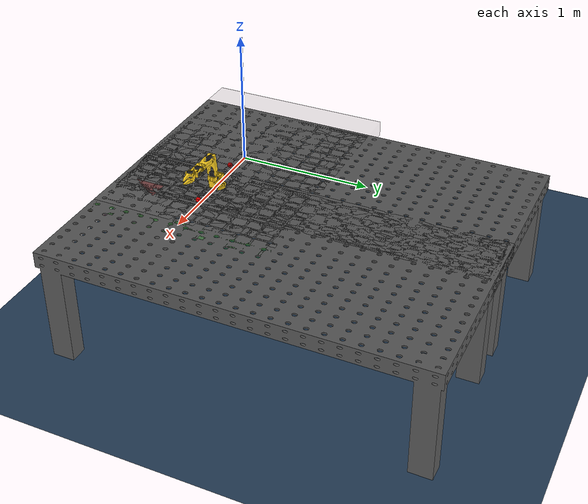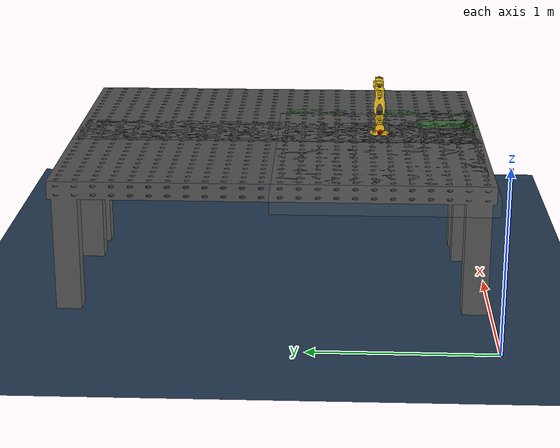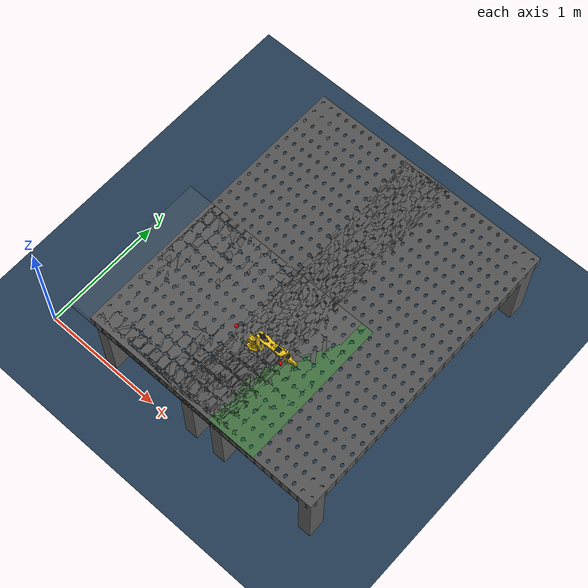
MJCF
<?xml version="1.0" ?>
<!-- SO101 Pick Box Scene - SO101 only, no UR5e -->
<mujoco model="so101_pick_box_scene">

    <compiler angle="radian" autolimits="true" />
    <option timestep="0.002" integrator="implicitfast" solver="PGS" cone="elliptic" impratio="10" noslip_iterations="3">
        <!-- 啟用 multiccd 和 nativeccd 以改善碰撞偵測，防止滑脫 -->
        <flag multiccd="enable" nativeccd="enable"/>
    </option>

    <!-- Include SO101 robot -->
    <include file="D:/lerobot_arm/mujoco_ur5_graph/imitation_learning_lerobot/assets/SO-ARM100/Simulation/SO101/so101_new_calib.xml" />

    <size memory="512000000" />
    <statistic center="1.4 0.6 0.8" extent="0.8" meansize="0.08" />

    <visual>
        <headlight diffuse="0.6 0.6 0.6" ambient="0.1 0.1 0.1" specular="0 0 0" />
        <rgba haze="0.15 0.25 0.35 1" />
        <global azimuth="120" elevation="-20" />
    </visual>

    <asset>
        <texture type="skybox" builtin="gradient" rgb1="0.3 0.5 0.7" rgb2="0 0 0" width="512" height="3072" />
        <texture type="2d" name="groundplane" builtin="checker" mark="edge" rgb1="0.2 0.3 0.4"
                 rgb2="0.1 0.2 0.3" markrgb="0.8 0.8 0.8" width="300" height="300" />
        <material name="groundplane" texture="groundplane" texuniform="true" texrepeat="5 5"
                  reflectance="0.2" />
        <mesh name="table" file="../table/sigmund_table.stl" scale="-1.5 2 1"/>
    </asset>

    <worldbody>
        <light pos="0 0 1.5" dir="0 0 -1" directional="true" />
        <geom name="floor" size="0 0 0.05" type="plane" material="groundplane" />

        <!-- Coordinate axes for debugging -->
        <geom name="x-aixs" group="2" type="cylinder" contype="0" conaffinity="0"
            fromto="0 0 0 1 0 0" size="0.01" rgba="1 0 0 1" />
        <geom name="y-aixs" group="2" type="cylinder" contype="0" conaffinity="0"
            fromto="0 0 0 0 1 0" size="0.01" rgba="0 1 0 1" />
        <geom name="z-aixs" group="2" type="cylinder" contype="0" conaffinity="0"
            fromto="0 0 0 0 0 1" size="0.01" rgba="0 0 1 1" />

        <!-- Cameras -->
        <!-- top: 後方高處俯視，可看到整隻手臂和操作區域 -->
        <camera name="top" pos="2.685 0.585 2.055" xyaxes="-0.009 1.000 0.000 -0.774 -0.007 0.633"/>

        <camera name="side" pos="2.224 1.451 1.025" xyaxes="-0.839 0.545 -0.000 -0.019 -0.029 0.999"/>

        <!-- Target point visualization (red sphere) - controlled by environment -->
        <body name="target_marker" pos="1.3 0.6 0.8" mocap="true">
            <geom name="target_marker" type="sphere" size="0.015" rgba="1 0 0 0.8" contype="0" conaffinity="0"/>
        </body>

        <!-- Red Box (target object) - 2F85 style friction settings -->
        <body name="Box" pos="1.70 0.6 0.78" quat="1 0 0 0">
            <joint name="Box" type="free" damping="0.05"/>
            <geom name="Box" type="box" size="0.01 0.01 0.01" rgba="1 0 0 1"
                  condim="6"
                  friction="5.0 1.0 0.5"
                  solimp="0.95 0.99 0.001"
                  solref="0.004 1"
                  priority="1"/>
        </body>

        <!-- Table -->
         <!--table -->
         <!-- Zones -->
		<body name="zone_pickup" pos="1.8 0.6 0.73" quat="1 0 0 0">
			<geom name="zone_pickup" type="box" size="0.2 0.6 0.01" rgba="0 1 0 0.1" contype="0" conaffinity="0"/>
		</body>
		<body name="zone_drop" pos="1.8 0.15 0.73" quat="1 0 0 0">
			<geom name="zone_drop" type="box" size="0.2 0.15 0.01" rgba="1 0 0 0.1" contype="0" conaffinity="0"/>
		</body>

		<body name = "table1" euler="0 0 0" pos= "0.5 0 0.74" >
		  <geom name = "table1" type="mesh" mesh="table" group="2" rgba="0.35 0.35 0.35 1" mass="0" contype="0" conaffinity="0" />
		</body>
		<body name = "table2" euler="0 0 0" pos= "1.3 0 0.74" >
		  <geom name = "table2" type="mesh" mesh="table" group="2" rgba="0.35 0.35 0.35 1" mass="0" contype="0" conaffinity="0" />
		</body>
        <body name="simple_table" pos="1.1 0.6 0.69" quat="1 0 0 0">
			<geom name="simple_table" type="box" size="0.8 0.6 0.05" rgba="0.5 0.5 0.5 0.1"/>
		</body>

    </worldbody>

    <equality>
        <!-- SO101 gripper grasping constraints (for future use) -->
        <weld name="grasp_so101" body1="so101_gripper" body2="Box" active="false" />
    </equality>

    <keyframe>
        <key name="home" qpos="-7.49507e-09 -1.74664 1.51484 1.25158 0.046801 -0.174534 1.69826 0.603792 0.749784 0.999998 7.56413e-06 -3.27543e-08 0.00219379" ctrl="0 -1.745 1.69 1.658 0 -0.1745" />
    </keyframe>

</mujoco>

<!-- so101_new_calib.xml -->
<!-- Generated using onshape-to-robot -->
<!-- Onshape https://cad.onshape.com/documents/7715cc284bb430fe6dab4ffd/w/4fd0791b683777b02f8d975a/e/826c553ede3b7592eb9ca800 -->
<mujoco model="so101_new_calib">
  <compiler angle="radian" autolimits="true" />
  <default>
    <default class="so101_new_calib">
      <joint damping="1" frictionloss="0.1" armature="0.005"/>
      <position kp="1000"/>
        <default class="so101_visual">
        <geom type="mesh" contype="0" conaffinity="0" group="2"/>
      </default>
        <default class="so101_collision">
        <geom group="3" contype="1" conaffinity="1"
              friction="7.0 1.0 0.5"
              solimp="0.95 0.99 0.001"
              solref="0.004 1"
              priority="1"/>
      </default>
    </default>
  </default>
  <!-- Additional joints_properties.xml -->
  <default>
    <default class="sts3215">
      <geom contype="0" conaffinity="0"/>
      <joint damping="0.60" frictionloss="0.052" armature="0.028"/>
      <!-- For lerobot this are not exactly the motor params as the Kp and Kd not map 1-to-1 thus motor idendification with lerobot Kp=16 and Kd=32 should actually be done -->
      <position kp="17.8"/>
    </default>
    <default class="backlash">
      <!-- +/- 0.5° of backlash -->
      <joint damping="0.01" frictionloss="0" armature="0.01" limited="true" range="-0.008726646259971648 0.008726646259971648"/>
    </default>
  </default>
  <worldbody>
    <!-- Link base -->
    <body name="so101_base" pos="1.45 0.6 0.745" quat="1 0 0 0" childclass="so101_new_calib">
      <inertial pos="0.0137179 -5.19711e-05 0.0334843" mass="0.147" fullinertia="0.000114686 0.000136117 0.000130364 -4.59787e-07 4.97151e-06 9.75275e-08"/>
      <!-- Part base_motor_holder_so101_v1 -->
      <geom type="mesh" class="so101_visual" pos="-0.00636471 -9.94414e-05 -0.0024" quat="0.5 0.5 0.5 0.5" mesh="so101_base_motor_holder_so101_v1" material="base_motor_holder_so101_v1_material"/>
      <!-- Part base_so101_v2 -->
      <geom type="mesh" class="so101_visual" pos="-0.00636471 -8.97657e-09 -0.0024" quat="0.5 0.5 0.5 0.5" mesh="so101_base_so101_v2" material="base_so101_v2_material"/>
      <!-- Part sts3215_03a_v1 -->
      <geom type="mesh" class="so101_visual" pos="0.0263353 -8.97657e-09 0.0437" quat="1 -2.85511e-16 -9.64433e-17 6.12908e-16" mesh="so101_sts3215_03a_v1" material="sts3215_03a_v1_material"/>
      <!-- Part waveshare_mounting_plate_so101_v2 -->
      <geom type="mesh" class="so101_visual" pos="-0.0309827 -0.000199441 0.0474" quat="0.5 0.5 0.5 0.5" mesh="so101_waveshare_mounting_plate_so101_v2" material="waveshare_mounting_plate_so101_v2_material"/>
      <!-- Frame baseframe -->
      <site group="3" name="so101_baseframe" pos="8.67362e-19 9.55596e-18 3.46945e-18" quat="1 -8.17396e-19 3.78392e-17 2.22045e-16"/>
      <!-- Link shoulder -->
      <body name="so101_shoulder" pos="0.0388353 -8.97657e-09 0.0624" quat="3.56167e-16 1.22818e-15 -1 -4.14635e-16">
        <!-- Joint from base to shoulder -->
        <joint axis="0 0 1" name="so101_shoulder_pan" type="hinge" range="-1.9198621771937616 1.9198621771937634" class="sts3215"/>
        <inertial pos="-0.0307604 -1.66727e-05 -0.0252713" mass="0.100006" fullinertia="8.3759e-05 8.10403e-05 2.39783e-05 7.55525e-08 -1.16342e-06 1.54663e-07"/>
        <!-- Part sts3215_03a_v1_2 -->
        <geom type="mesh" class="so101_visual" pos="-0.0303992 0.000422241 -0.0417" quat="0.5 0.5 0.5 -0.5" mesh="so101_sts3215_03a_v1" material="sts3215_03a_v1_material"/>
        <geom type="mesh" class="so101_collision" pos="-0.0303992 0.000422241 -0.0417" quat="0.5 0.5 0.5 -0.5" mesh="so101_sts3215_03a_v1" material="sts3215_03a_v1_material"/>
        <!-- Part motor_holder_so101_base_v1 -->
        <geom type="mesh" class="so101_visual" pos="-0.0675992 -0.000177759 0.0158499" quat="0.5 0.5 -0.5 0.5" mesh="so101_motor_holder_so101_base_v1" material="motor_holder_so101_base_v1_material"/>
        <geom type="mesh" class="so101_collision" pos="-0.0675992 -0.000177759 0.0158499" quat="0.5 0.5 -0.5 0.5" mesh="so101_motor_holder_so101_base_v1" material="motor_holder_so101_base_v1_material"/>
        <!-- Part rotation_pitch_so101_v1 -->
        <geom type="mesh" class="so101_visual" pos="0.0122008 2.22413e-05 0.0464" quat="0.707107 -0.707107 -0 8.3163e-34" mesh="so101_rotation_pitch_so101_v1" material="rotation_pitch_so101_v1_material"/>
        <geom type="mesh" class="so101_collision" pos="0.0122008 2.22413e-05 0.0464" quat="0.707107 -0.707107 -0 8.3163e-34" mesh="so101_rotation_pitch_so101_v1" material="rotation_pitch_so101_v1_material"/>
        <!-- Link upper_arm -->
        <body name="so101_upper_arm" pos="-0.0303992 -0.0182778 -0.0542" quat="0.5 -0.5 -0.5 -0.5">
          <!-- Joint from shoulder to upper_arm -->
          <joint axis="0 0 1" name="so101_shoulder_lift" type="hinge" range="-1.7453292519943224 1.7453292519943366" class="sts3215"/>
          <inertial pos="-0.0898471 -0.00838224 0.0184089" mass="0.103" fullinertia="4.08002e-05 0.000147318 0.000142487 -1.97819e-05 -4.03016e-08 8.97326e-09"/>
          <!-- Part sts3215_03a_v1_3 -->
          <geom type="mesh" class="so101_visual" pos="-0.11257 -0.0155 0.0187" quat="4.56308e-16 -0.707107 0.707107 -1.37383e-16" mesh="so101_sts3215_03a_v1" material="sts3215_03a_v1_material"/>
          <geom type="mesh" class="so101_collision" pos="-0.11257 -0.0155 0.0187" quat="4.56308e-16 -0.707107 0.707107 -1.37383e-16" mesh="so101_sts3215_03a_v1" material="sts3215_03a_v1_material"/>
          <!-- Part upper_arm_so101_v1 -->
          <geom type="mesh" class="so101_visual" pos="-0.065085 0.012 0.0182" quat="0 1 0 0" mesh="so101_upper_arm_so101_v1" material="upper_arm_so101_v1_material"/>
          <geom type="mesh" class="so101_collision" pos="-0.065085 0.012 0.0182" quat="0 1 0 0" mesh="so101_upper_arm_so101_v1" material="upper_arm_so101_v1_material"/>
          <!-- Link lower_arm -->
          <body name="so101_lower_arm" pos="-0.11257 -0.028 1.73763e-16" quat="0.707107 -5.98613e-17 -2.58051e-17 0.707107">
            <!-- Joint from upper_arm to lower_arm -->
            <!-- Note: 5-degree calibration offset applied to joint range -->
            <joint axis="0 0 1" name="so101_elbow_flex" type="hinge" range="-1.69 1.69" class="sts3215"/>
            <inertial pos="-0.0980701 0.00324376 0.0182831" mass="0.104" fullinertia="2.87438e-05 0.000159844 0.00014529 7.41152e-06 1.26409e-06 -4.90188e-08"/>
            <!-- Part under_arm_so101_v1 -->
            <geom type="mesh" class="so101_visual" pos="-0.0648499 -0.032 0.0182" quat="0 1 0 0" mesh="so101_under_arm_so101_v1" material="under_arm_so101_v1_material"/>
            <geom type="mesh" class="so101_collision" pos="-0.0648499 -0.032 0.0182" quat="0 1 0 0" mesh="so101_under_arm_so101_v1" material="under_arm_so101_v1_material"/>
            <!-- Part motor_holder_so101_wrist_v1 -->
            <geom type="mesh" class="so101_visual" pos="-0.0648499 -0.032 0.018" quat="3.92687e-16 -1 -1.9186e-15 -6.38378e-16" mesh="so101_motor_holder_so101_wrist_v1" material="motor_holder_so101_wrist_v1_material"/>
            <geom type="mesh" class="so101_collision" pos="-0.0648499 -0.032 0.018" quat="3.92687e-16 -1 -1.9186e-15 -6.38378e-16" mesh="so101_motor_holder_so101_wrist_v1" material="motor_holder_so101_wrist_v1_material"/>
            <!-- Part sts3215_03a_v1_4 -->
            <geom type="mesh" class="so101_visual" pos="-0.1224 0.0052 0.0187" quat="7.21645e-16 1.56949e-15 1 -3.33067e-16" mesh="so101_sts3215_03a_v1" material="sts3215_03a_v1_material"/>
            <geom type="mesh" class="so101_collision" pos="-0.1224 0.0052 0.0187" quat="7.21645e-16 1.56949e-15 1 -3.33067e-16" mesh="so101_sts3215_03a_v1" material="sts3215_03a_v1_material"/>
            <!-- Link wrist -->
            <body name="so101_wrist" pos="-0.1349 0.0052 3.62355e-17" quat="0.707107 9.58722e-16 -7.51313e-16 -0.707107">
              <!-- Joint from lower_arm to wrist -->
              <joint axis="0 0 1" name="so101_wrist_flex" type="hinge" range="-1.6580628494556928 1.6580627293335335" class="sts3215"/>
              <inertial pos="-0.000103312 -0.0386143 0.0281156" mass="0.079" fullinertia="3.68263e-05 2.5391e-05 2.1e-05 1.7893e-08 -5.28128e-08 3.6412e-06"/>
              <!-- Part sts3215_03a_no_horn_v1 -->
              <geom type="mesh" class="so101_visual" pos="8.32667e-17 -0.0424 0.0306" quat="0.5 0.5 0.5 -0.5" mesh="so101_sts3215_03a_no_horn_v1" material="sts3215_03a_no_horn_v1_material"/>
              <geom type="mesh" class="so101_collision" pos="8.32667e-17 -0.0424 0.0306" quat="0.5 0.5 0.5 -0.5" mesh="so101_sts3215_03a_no_horn_v1" material="sts3215_03a_no_horn_v1_material"/>
              <!-- Part wrist_roll_pitch_so101_v2 -->
              <geom type="mesh" class="so101_visual" pos="0 -0.028 0.0181" quat="0.5 -0.5 -0.5 -0.5" mesh="so101_wrist_roll_pitch_so101_v2" material="wrist_roll_pitch_so101_v2_material"/>
              <geom type="mesh" class="so101_collision" pos="0 -0.028 0.0181" quat="0.5 -0.5 -0.5 -0.5" mesh="so101_wrist_roll_pitch_so101_v2" material="wrist_roll_pitch_so101_v2_material"/>
              <!-- Link gripper -->
              <body name="so101_gripper" pos="5.55112e-17 -0.0611 0.0181" quat="0.0172091 -0.0172091 0.706897 0.706897">
                <!-- Joint from wrist to gripper -->
                <joint axis="0 0 1" name="so101_wrist_roll" type="hinge" range="-2.7438472969992493 2.841206309382605" class="sts3215"/>
                <inertial pos="0.000213627 0.000245138 -0.025187" mass="0.087" fullinertia="2.75087e-05 4.33657e-05 3.45059e-05 -3.35241e-07 -5.7352e-06 -5.17847e-08"/>
                <!-- Part sts3215_03a_v1_5 -->
                <geom type="mesh" class="so101_visual" pos="0.0077 0.0001 -0.0234" quat="0.707107 -0.707107 1.66015e-15 6.45094e-15" mesh="so101_sts3215_03a_v1" material="sts3215_03a_v1_material"/>
                <geom type="mesh" class="so101_collision" pos="0.0077 0.0001 -0.0234" quat="0.707107 -0.707107 1.66015e-15 6.45094e-15" mesh="so101_sts3215_03a_v1" material="sts3215_03a_v1_material"/>
                <!-- Part wrist_roll_follower_so101_v1 -->
                <geom type="mesh" class="so101_visual" pos="8.32667e-17 -0.000218214 0.000949706" quat="0 1 0 0" mesh="so101_wrist_roll_follower_so101_v1" material="wrist_roll_follower_so101_v1_material"/>
                <geom type="mesh" class="so101_collision" pos="8.32667e-17 -0.000218214 0.000949706" quat="0 1 0 0" mesh="so101_wrist_roll_follower_so101_v1" material="wrist_roll_follower_so101_v1_material"
                      friction="5.0" solimp="0.95 0.99 0.001" solref="0.004 1" priority="1" condim="6"/>
                <!-- Frame gripperframe -->
                <site group="3" name="so101_gripperframe" pos="-0.0079 -0.000218121 -0.0981274" quat="0.707107 -0 0.707107 -2.37788e-17"/>
                <!-- hand: 跟隨夾爪相機，從後上方俯視夾爪 -->
                <!-- gripperframe 位於 z=-0.098，所以夾爪尖端在負Z方向 -->
                <!-- 相機放在後上方 (z=0.05, y=0.06)，看向前下方 (負Z方向) -->
                <camera name="hand" pos="0 0.05 -0.01" xyaxes="1 0 0 0 0.6 -0.8" mode="fixed" fovy="80" />
                <!-- 固定爪：使用 mesh 碰撞（上方 wrist_roll_follower 已設定高摩擦） -->
                <!-- Link moving_jaw_so101_v1 -->
                <body name="moving_jaw_so101_v1" pos="0.0202 0.0188 -0.0234" quat="0.707107 0.707107 -1.85362e-08 1.85362e-08">
                  <!-- Joint from gripper to moving_jaw_so101_v1 -->
                  <joint axis="0 0 1" name="so101_gripper_joint" type="hinge" range="-0.17453297762778586 1.7453291995659765" class="sts3215"/>
                  <inertial pos="-0.00157495 -0.0300244 0.0192755" mass="0.012" fullinertia="6.61427e-06 1.89032e-06 5.28738e-06 -3.19807e-07 -5.90717e-09 -1.09945e-07"/>
                  <!-- Part moving_jaw_so101_v1 -->
                  <geom type="mesh" class="so101_visual" pos="-5.55112e-17 -5.55112e-17 0.0189" quat="1 -0 3.00524e-16 -2.00834e-17" mesh="so101_moving_jaw_so101_v1" material="moving_jaw_so101_v1_material"/>
                  <!-- 活動爪：使用 mesh 碰撞（設定高摩擦） -->
                  <geom type="mesh" class="so101_collision"
                        pos="-5.55112e-17 -5.55112e-17 0.0189" quat="1 -0 3.00524e-16 -2.00834e-17"
                        mesh="so101_moving_jaw_so101_v1" material="moving_jaw_so101_v1_material"
                        friction="5.0" solimp="0.95 0.99 0.001" solref="0.004 1"
                        priority="1" condim="6"/>
                  <!-- 舊的 box 碰撞墊（已停用）-->
                </body>
              </body>
            </body>
          </body>
        </body>
      </body>
    </body>
  </worldbody>
  <asset>
    <mesh name="so101_waveshare_mounting_plate_so101_v2" file="../SO-ARM100/Simulation/SO101/assets/waveshare_mounting_plate_so101_v2.stl"/>
    <mesh name="so101_sts3215_03a_v1" file="../SO-ARM100/Simulation/SO101/assets/sts3215_03a_v1.stl"/>
    <mesh name="so101_motor_holder_so101_base_v1" file="../SO-ARM100/Simulation/SO101/assets/motor_holder_so101_base_v1.stl"/>
    <mesh name="so101_wrist_roll_follower_so101_v1" file="../SO-ARM100/Simulation/SO101/assets/wrist_roll_follower_so101_v1.stl"/>
    <mesh name="so101_moving_jaw_so101_v1" file="../SO-ARM100/Simulation/SO101/assets/moving_jaw_so101_v1.stl"/>
    <mesh name="so101_base_motor_holder_so101_v1" file="../SO-ARM100/Simulation/SO101/assets/base_motor_holder_so101_v1.stl"/>
    <mesh name="so101_upper_arm_so101_v1" file="../SO-ARM100/Simulation/SO101/assets/upper_arm_so101_v1.stl"/>
    <mesh name="so101_wrist_roll_pitch_so101_v2" file="../SO-ARM100/Simulation/SO101/assets/wrist_roll_pitch_so101_v2.stl"/>
    <mesh name="so101_under_arm_so101_v1" file="../SO-ARM100/Simulation/SO101/assets/under_arm_so101_v1.stl"/>
    <mesh name="so101_rotation_pitch_so101_v1" file="../SO-ARM100/Simulation/SO101/assets/rotation_pitch_so101_v1.stl"/>
    <mesh name="so101_motor_holder_so101_wrist_v1" file="../SO-ARM100/Simulation/SO101/assets/motor_holder_so101_wrist_v1.stl"/>
    <mesh name="so101_sts3215_03a_no_horn_v1" file="../SO-ARM100/Simulation/SO101/assets/sts3215_03a_no_horn_v1.stl"/>
    <mesh name="so101_base_so101_v2" file="../SO-ARM100/Simulation/SO101/assets/base_so101_v2.stl"/>
    <material name="base_motor_holder_so101_v1_material" rgba="1 0.82 0.12 1"/>
    <material name="base_so101_v2_material" rgba="1 0.82 0.12 1"/>
    <material name="sts3215_03a_v1_material" rgba="0.1 0.1 0.1 1"/>
    <material name="waveshare_mounting_plate_so101_v2_material" rgba="1 0.82 0.12 1"/>
    <material name="motor_holder_so101_base_v1_material" rgba="1 0.82 0.12 1"/>
    <material name="rotation_pitch_so101_v1_material" rgba="1 0.82 0.12 1"/>
    <material name="upper_arm_so101_v1_material" rgba="1 0.82 0.12 1"/>
    <material name="under_arm_so101_v1_material" rgba="1 0.82 0.12 1"/>
    <material name="motor_holder_so101_wrist_v1_material" rgba="1 0.82 0.12 1"/>
    <material name="sts3215_03a_no_horn_v1_material" rgba="0.1 0.1 0.1 1.0"/>
    <material name="wrist_roll_pitch_so101_v2_material" rgba="1 0.82 0.12 1"/>
    <material name="wrist_roll_follower_so101_v1_material" rgba="1 0.82 0.12 1"/>
    <material name="moving_jaw_so101_v1_material" rgba="1 0.82 0.12 1"/>
  </asset>
  <actuator>
    <position class="sts3215" name="so101_shoulder_pan" joint="so101_shoulder_pan" forcerange="-33.5 33.5" ctrlrange="-1.91986 1.91986"/>
    <position class="sts3215" name="so101_shoulder_lift" joint="so101_shoulder_lift" forcerange="-33.5 33.5" ctrlrange="-1.74533 1.74533"/>
    <position class="sts3215" name="so101_elbow_flex" joint="so101_elbow_flex" forcerange="-33.5 33.5" ctrlrange="-1.69 1.69"/>
    <position class="sts3215" name="so101_wrist_flex" joint="so101_wrist_flex" forcerange="-33.5 33.5" ctrlrange="-1.65806 1.65806"/>
    <position class="sts3215" name="so101_wrist_roll" joint="so101_wrist_roll" forcerange="-33.5 33.5" ctrlrange="-2.74385 2.84121"/>
    <position class="sts3215" name="so101_gripper" joint="so101_gripper_joint" forcerange="-33.5 33.5" ctrlrange="-0.17453 1.74533"/>
  </actuator>
  <equality/>
</mujoco>
